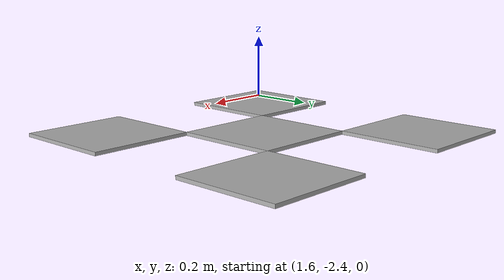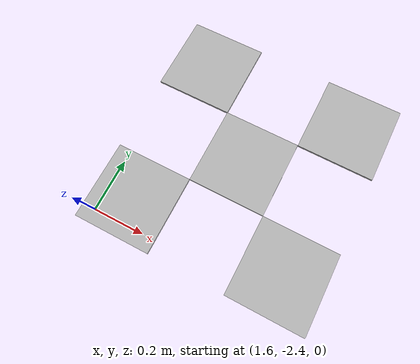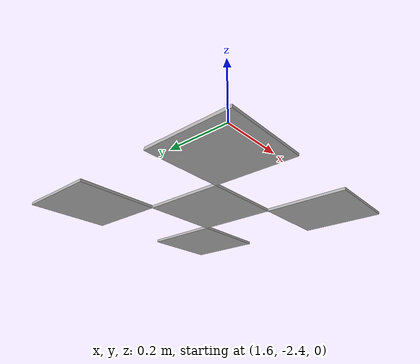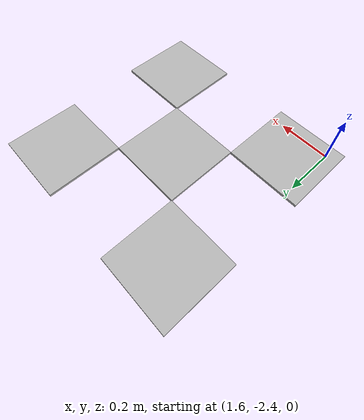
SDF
<?xml version="1.0" ?>
<sdf version="1.4">

	<model name='tag_bundle1'>

		<static>True</static>

		<link name="tag_0">

			<pose>2 -2 0 0 1.5713 1.5713</pose>

			<inertial>
	        	<mass>0.1</mass>

	        	<inertia>
					<ixx>0.0166667</ixx>
					<ixy>0</ixy>
					<ixz>0</ixz>
					<iyy>0.0166667</iyy>
					<iyz>0</iyz>
					<izz>0.0166667</izz>
        		</inertia>

        		<pose frame=''>0 0 0 0 -0 0</pose>
      		</inertial>

			<pose frame=''>0 0 0 0 -0 0</pose>
			<gravity>1</gravity>
			<self_collide>0</self_collide>
			<kinematic>0</kinematic>
			<enable_wind>0</enable_wind>

			<visual name='visual_0'>
				<pose frame=''>0 0 0 0 -0 0</pose>

		        <geometry>
		        	<box>
		        	<size>0.01 0.3 0.3</size>
		        	</box>
		        </geometry>

		        <material>
		        	<lighting>0</lighting>

		        	<script>
		        		<uri>models://media/materials/scripts/Apriltag.material</uri>
		        		<name>Apriltag/id0</name>
		          	</script>

		        	<shader type='vertex'>
		        		<normal_map>__default__</normal_map>
		          	</shader>

		        	<ambient>0.3 0.3 0.3 1</ambient>
		        	<diffuse>0.7 0.7 0.7 1</diffuse>
		        	<specular>0.01 0.01 0.01 1</specular>
		        	<emissive>0 0 0 1</emissive>
		        </material>

		        <transparency>0</transparency>
		        <cast_shadows>1</cast_shadows>
			</visual>

			<collision name='collision_0'>
				<laser_retro>0</laser_retro>
        		<max_contacts>10</max_contacts>
        		<pose frame=''>0 0 0 0 -0 0</pose>

		        <geometry>
		        	<box>
		        		<size>0.01 0.3 0.3</size>
		        	</box>
		        </geometry>

		        <surface>
		        	<friction>
		            	<ode>
		            		<mu>1</mu>
		            		<mu2>1</mu2>
		            		<fdir1>0 0 0</fdir1>
		            		<slip1>0</slip1>
		            		<slip2>0</slip2>
		            	</ode>

		           		<torsional>
		            		<coefficient>1</coefficient>
	            			<patch_radius>0</patch_radius>
	            			<surface_radius>0</surface_radius>
	            			<use_patch_radius>1</use_patch_radius>

	            			<ode>
		                		<slip>0</slip>
		              		</ode>
		            	</torsional>
		          	</friction>

		        	<bounce>
		            	<restitution_coefficient>0</restitution_coefficient>
		            	<threshold>1e+06</threshold>
		        	</bounce>

		        	<contact>
		            	<collide_without_contact>0</collide_without_contact>
		            	<collide_without_contact_bitmask>1</collide_without_contact_bitmask>
		            	<collide_bitmask>1</collide_bitmask>

		            	<ode>
		            		<soft_cfm>0</soft_cfm>
		            		<soft_erp>0.2</soft_erp>
		            		<kp>1e+13</kp>
		            		<kd>1</kd>
		            		<max_vel>0.01</max_vel>
		            		<min_depth>0</min_depth>
		            	</ode>

			            <bullet>
			            	<split_impulse>1</split_impulse>
			            	<split_impulse_penetration_threshold>-0.01</split_impulse_penetration_threshold>
			            	<soft_cfm>0</soft_cfm>
			            	<soft_erp>0.2</soft_erp>
			            	<kp>1e+13</kp>
			            	<kd>1</kd>
			            </bullet>
		        	</contact>
		        </surface>
		    </collision>
		</link>

		<link name="tag_1">

			<pose>2.3 -2.3 0 0 1.5713 1.5713</pose>

			<inertial>
	        	<mass>0.1</mass>

	        	<inertia>
					<ixx>0.0166667</ixx>
					<ixy>0</ixy>
					<ixz>0</ixz>
					<iyy>0.0166667</iyy>
					<iyz>0</iyz>
					<izz>0.0166667</izz>
        		</inertia>

        		<pose frame=''>0 0 0 0 -0 0</pose>
      		</inertial>

			<pose frame=''>0 0 0 0 -0 0</pose>
			<gravity>1</gravity>
			<self_collide>0</self_collide>
			<kinematic>0</kinematic>
			<enable_wind>0</enable_wind>

 			<visual name='visual_1'>
				<pose frame=''>0 0 0 0 -0 0</pose>

		        <geometry>
		        	<box>
		        	<size>0.01 0.3 0.3</size>
		        	</box>
		        </geometry>

		        <material>
		        	<lighting>0</lighting>

		        	<script>
		        		<uri>models://media/materials/scripts/Apriltag.material</uri>
		        		<name>Apriltag/id1</name>
		          	</script>

		        	<shader type='vertex'>
		        		<normal_map>__default__</normal_map>
		          	</shader>

		        	<ambient>0.3 0.3 0.3 1</ambient>
		        	<diffuse>0.7 0.7 0.7 1</diffuse>
		        	<specular>0.01 0.01 0.01 1</specular>
		        	<emissive>0 0 0 1</emissive>
		        </material>

		        <transparency>0</transparency>
		        <cast_shadows>1</cast_shadows>
			</visual>

			<collision name='collision_1'>
				<laser_retro>0</laser_retro>
        		<max_contacts>10</max_contacts>
        		<pose frame=''>0 0 0 0 -0 0</pose>

		        <geometry>
		        	<box>
		        		<size>0.01 0.3 0.3</size>
		        	</box>
		        </geometry>

		        <surface>
		        	<friction>
		            	<ode>
		            		<mu>1</mu>
		            		<mu2>1</mu2>
		            		<fdir1>0 0 0</fdir1>
		            		<slip1>0</slip1>
		            		<slip2>0</slip2>
		            	</ode>

		           		<torsional>
		            		<coefficient>1</coefficient>
	            			<patch_radius>0</patch_radius>
	            			<surface_radius>0</surface_radius>
	            			<use_patch_radius>1</use_patch_radius>

	            			<ode>
		                		<slip>0</slip>
		              		</ode>
		            	</torsional>
		          	</friction>

		        	<bounce>
		            	<restitution_coefficient>0</restitution_coefficient>
		            	<threshold>1e+06</threshold>
		        	</bounce>

		        	<contact>
		            	<collide_without_contact>0</collide_without_contact>
		            	<collide_without_contact_bitmask>1</collide_without_contact_bitmask>
		            	<collide_bitmask>1</collide_bitmask>

		            	<ode>
		            		<soft_cfm>0</soft_cfm>
		            		<soft_erp>0.2</soft_erp>
		            		<kp>1e+13</kp>
		            		<kd>1</kd>
		            		<max_vel>0.01</max_vel>
		            		<min_depth>0</min_depth>
		            	</ode>

			            <bullet>
			            	<split_impulse>1</split_impulse>
			            	<split_impulse_penetration_threshold>-0.01</split_impulse_penetration_threshold>
			            	<soft_cfm>0</soft_cfm>
			            	<soft_erp>0.2</soft_erp>
			            	<kp>1e+13</kp>
			            	<kd>1</kd>
			            </bullet>
		        	</contact>
		        </surface>
		    </collision>
		</link>

		<link name="tag_2">

			<pose>2.3 -1.7 0 0 1.5713 1.5713</pose>

			<inertial>
	        	<mass>0.1</mass>

	        	<inertia>
					<ixx>0.0166667</ixx>
					<ixy>0</ixy>
					<ixz>0</ixz>
					<iyy>0.0166667</iyy>
					<iyz>0</iyz>
					<izz>0.0166667</izz>
        		</inertia>

        		<pose frame=''>0 0 0 0 -0 0</pose>
      		</inertial>

			<pose frame=''>0 0 0 0 -0 0</pose>
			<gravity>1</gravity>
			<self_collide>0</self_collide>
			<kinematic>0</kinematic>
			<enable_wind>0</enable_wind>

			<visual name='visual_2'>
				<pose frame=''>0 0 0 0 -0 0</pose>

		        <geometry>
		        	<box>
		        	<size>0.01 0.3 0.3</size>
		        	</box>
		        </geometry>

		        <material>
		        	<lighting>0</lighting>

		        	<script>
		        		<uri>models://media/materials/scripts/Apriltag.material</uri>
		        		<name>Apriltag/id2</name>
		          	</script>

		        	<shader type='vertex'>
		        		<normal_map>__default__</normal_map>
		          	</shader>

		        	<ambient>0.3 0.3 0.3 1</ambient>
		        	<diffuse>0.7 0.7 0.7 1</diffuse>
		        	<specular>0.01 0.01 0.01 1</specular>
		        	<emissive>0 0 0 1</emissive>
		        </material>

		        <transparency>0</transparency>
		        <cast_shadows>1</cast_shadows>
			</visual>

			<collision name='collision_2'>
				<laser_retro>0</laser_retro>
        		<max_contacts>10</max_contacts>
        		<pose frame=''>0 0 0 0 -0 0</pose>

		        <geometry>
		        	<box>
		        		<size>0.01 0.3 0.3</size>
		        	</box>
		        </geometry>

		        <surface>
		        	<friction>
		            	<ode>
		            		<mu>1</mu>
		            		<mu2>1</mu2>
		            		<fdir1>0 0 0</fdir1>
		            		<slip1>0</slip1>
		            		<slip2>0</slip2>
		            	</ode>

		           		<torsional>
		            		<coefficient>1</coefficient>
	            			<patch_radius>0</patch_radius>
	            			<surface_radius>0</surface_radius>
	            			<use_patch_radius>1</use_patch_radius>

	            			<ode>
		                		<slip>0</slip>
		              		</ode>
		            	</torsional>
		          	</friction>

		        	<bounce>
		            	<restitution_coefficient>0</restitution_coefficient>
		            	<threshold>1e+06</threshold>
		        	</bounce>

		        	<contact>
		            	<collide_without_contact>0</collide_without_contact>
		            	<collide_without_contact_bitmask>1</collide_without_contact_bitmask>
		            	<collide_bitmask>1</collide_bitmask>

		            	<ode>
		            		<soft_cfm>0</soft_cfm>
		            		<soft_erp>0.2</soft_erp>
		            		<kp>1e+13</kp>
		            		<kd>1</kd>
		            		<max_vel>0.01</max_vel>
		            		<min_depth>0</min_depth>
		            	</ode>

			            <bullet>
			            	<split_impulse>1</split_impulse>
			            	<split_impulse_penetration_threshold>-0.01</split_impulse_penetration_threshold>
			            	<soft_cfm>0</soft_cfm>
			            	<soft_erp>0.2</soft_erp>
			            	<kp>1e+13</kp>
			            	<kd>1</kd>
			            </bullet>
		        	</contact>
		        </surface>
		    </collision>
		</link>

		<link name="tag_3">

			<pose>1.7 -1.7 0 0 1.5713 1.5713</pose>

			<inertial>
	        	<mass>0.1</mass>

	        	<inertia>
					<ixx>0.0166667</ixx>
					<ixy>0</ixy>
					<ixz>0</ixz>
					<iyy>0.0166667</iyy>
					<iyz>0</iyz>
					<izz>0.0166667</izz>
        		</inertia>

        		<pose frame=''>0 0 0 0 -0 0</pose>
      		</inertial>

			<pose frame=''>0 0 0 0 -0 0</pose>
			<gravity>1</gravity>
			<self_collide>0</self_collide>
			<kinematic>0</kinematic>
			<enable_wind>0</enable_wind>

			<visual name='visual_3'>
				<pose frame=''>0 0 0 0 -0 0</pose>

		        <geometry>
		        	<box>
		        	<size>0.01 0.3 0.3</size>
		        	</box>
		        </geometry>

		        <material>
		        	<lighting>0</lighting>

		        	<script>
		        		<uri>models://media/materials/scripts/Apriltag.material</uri>
		        		<name>Apriltag/id3</name>
		          	</script>

		        	<shader type='vertex'>
		        		<normal_map>__default__</normal_map>
		          	</shader>

		        	<ambient>0.3 0.3 0.3 1</ambient>
		        	<diffuse>0.7 0.7 0.7 1</diffuse>
		        	<specular>0.01 0.01 0.01 1</specular>
		        	<emissive>0 0 0 1</emissive>
		        </material>

		        <transparency>0</transparency>
		        <cast_shadows>1</cast_shadows>
			</visual>

			<collision name='collision_3'>
				<laser_retro>0</laser_retro>
        		<max_contacts>10</max_contacts>
        		<pose frame=''>0 0 0 0 -0 0</pose>

		        <geometry>
		        	<box>
		        		<size>0.01 0.3 0.3</size>
		        	</box>
		        </geometry>

		        <surface>
		        	<friction>
		            	<ode>
		            		<mu>1</mu>
		            		<mu2>1</mu2>
		            		<fdir1>0 0 0</fdir1>
		            		<slip1>0</slip1>
		            		<slip2>0</slip2>
		            	</ode>

		           		<torsional>
		            		<coefficient>1</coefficient>
	            			<patch_radius>0</patch_radius>
	            			<surface_radius>0</surface_radius>
	            			<use_patch_radius>1</use_patch_radius>

	            			<ode>
		                		<slip>0</slip>
		              		</ode>
		            	</torsional>
		          	</friction>

		        	<bounce>
		            	<restitution_coefficient>0</restitution_coefficient>
		            	<threshold>1e+06</threshold>
		        	</bounce>

		        	<contact>
		            	<collide_without_contact>0</collide_without_contact>
		            	<collide_without_contact_bitmask>1</collide_without_contact_bitmask>
		            	<collide_bitmask>1</collide_bitmask>

		            	<ode>
		            		<soft_cfm>0</soft_cfm>
		            		<soft_erp>0.2</soft_erp>
		            		<kp>1e+13</kp>
		            		<kd>1</kd>
		            		<max_vel>0.01</max_vel>
		            		<min_depth>0</min_depth>
		            	</ode>

			            <bullet>
			            	<split_impulse>1</split_impulse>
			            	<split_impulse_penetration_threshold>-0.01</split_impulse_penetration_threshold>
			            	<soft_cfm>0</soft_cfm>
			            	<soft_erp>0.2</soft_erp>
			            	<kp>1e+13</kp>
			            	<kd>1</kd>
			            </bullet>
		        	</contact>
		        </surface>
		    </collision>
		</link>

		<link name="tag_4">

			<pose>1.7 -2.3 0 0 1.5713 1.5713</pose>

			<inertial>
	        	<mass>0.1</mass>

	        	<inertia>
					<ixx>0.0166667</ixx>
					<ixy>0</ixy>
					<ixz>0</ixz>
					<iyy>0.0166667</iyy>
					<iyz>0</iyz>
					<izz>0.0166667</izz>
        		</inertia>

        		<pose frame=''>0 0 0 0 -0 0</pose>
      		</inertial>

			<pose frame=''>0 0 0 0 -0 0</pose>
			<gravity>1</gravity>
			<self_collide>0</self_collide>
			<kinematic>0</kinematic>
			<enable_wind>0</enable_wind>

			<visual name='visual_4'>
				<pose frame=''>0 0 0 0 -0 0</pose>

		        <geometry>
		        	<box>
		        	<size>0.01 0.3 0.3</size>
		        	</box>
		        </geometry>

		        <material>
		        	<lighting>0</lighting>

		        	<script>
		        		<uri>models://media/materials/scripts/Apriltag.material</uri>
		        		<name>Apriltag/id4</name>
		          	</script>

		        	<shader type='vertex'>
		        		<normal_map>__default__</normal_map>
		          	</shader>

		        	<ambient>0.3 0.3 0.3 1</ambient>
		        	<diffuse>0.7 0.7 0.7 1</diffuse>
		        	<specular>0.01 0.01 0.01 1</specular>
		        	<emissive>0 0 0 1</emissive>
		        </material>

		        <transparency>0</transparency>
		        <cast_shadows>1</cast_shadows>
			</visual>

			<collision name='collision_4'>
				<laser_retro>0</laser_retro>
        		<max_contacts>10</max_contacts>
        		<pose frame=''>0 0 0 0 -0 0</pose>

		        <geometry>
		        	<box>
		        		<size>0.01 0.3 0.3</size>
		        	</box>
		        </geometry>

		        <surface>
		        	<friction>
		            	<ode>
		            		<mu>1</mu>
		            		<mu2>1</mu2>
		            		<fdir1>0 0 0</fdir1>
		            		<slip1>0</slip1>
		            		<slip2>0</slip2>
		            	</ode>

		           		<torsional>
		            		<coefficient>1</coefficient>
	            			<patch_radius>0</patch_radius>
	            			<surface_radius>0</surface_radius>
	            			<use_patch_radius>1</use_patch_radius>

	            			<ode>
		                		<slip>0</slip>
		              		</ode>
		            	</torsional>
		          	</friction>

		        	<bounce>
		            	<restitution_coefficient>0</restitution_coefficient>
		            	<threshold>1e+06</threshold>
		        	</bounce>

		        	<contact>
		            	<collide_without_contact>0</collide_without_contact>
		            	<collide_without_contact_bitmask>1</collide_without_contact_bitmask>
		            	<collide_bitmask>1</collide_bitmask>

		            	<ode>
		            		<soft_cfm>0</soft_cfm>
		            		<soft_erp>0.2</soft_erp>
		            		<kp>1e+13</kp>
		            		<kd>1</kd>
		            		<max_vel>0.01</max_vel>
		            		<min_depth>0</min_depth>
		            	</ode>

			            <bullet>
			            	<split_impulse>1</split_impulse>
			            	<split_impulse_penetration_threshold>-0.01</split_impulse_penetration_threshold>
			            	<soft_cfm>0</soft_cfm>
			            	<soft_erp>0.2</soft_erp>
			            	<kp>1e+13</kp>
			            	<kd>1</kd>
			            </bullet>
		        	</contact>
		        </surface>
		    </collision>
		</link>

		<joint name = "joint_1" type="fixed">
			<axis xyz="0 0 0" />
			<parent link="tag_0" />
			<child link="tag_1" />
	    </joint>

	    <joint name = "joint_2" type="fixed">
			<axis xyz="0 0 0" />
			<parent link="tag_0" />
			<child link="tag_2" />
	    </joint>

	    <joint name = "joint_3" type="fixed">
			<axis xyz="0 0 0" />
			<parent link="tag_0" />
			<child link="tag_3" />
	    </joint>

	    <joint name = "joint_4" type="fixed">
			<axis xyz="0 0 0" />
			<parent link="tag_0" />
			<child link="tag_4" />
	    </joint>

	</model>

</sdf>
